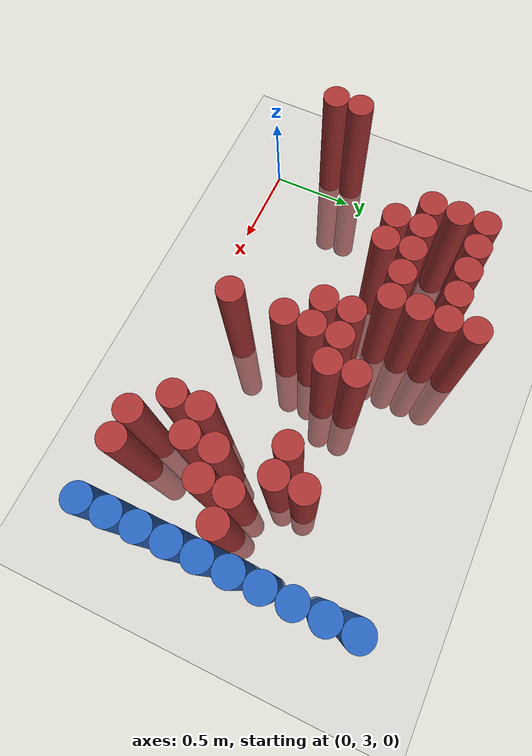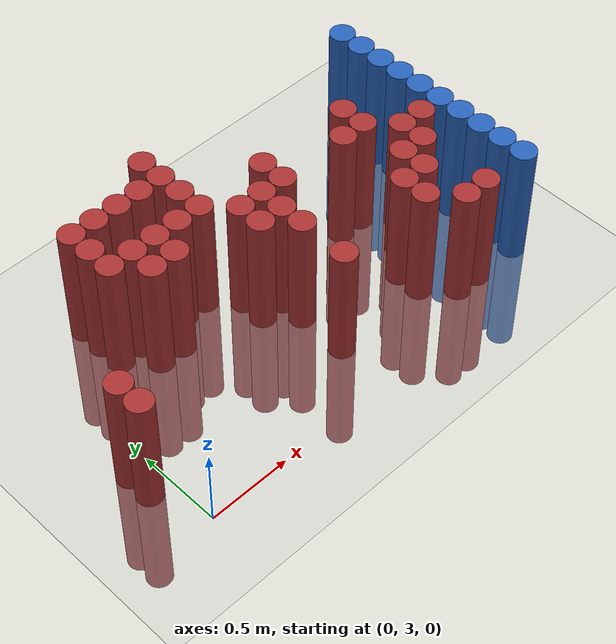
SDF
<sdf version="1.6">
 <world name="default">
  <model name="ground_plane">
   <static>1</static>
   <link name="link">
    <collision name="collision">
     <geometry><plane><normal>0 0 1</normal><size>100 100</size></plane></geometry>
     <surface><friction><ode><mu>100</mu><mu2>50</mu2></ode></friction></surface>
    </collision>
    <visual name="visual">
     <cast_shadows>0</cast_shadows>
     <geometry><plane><normal>0 0 1</normal><size>100 100</size></plane></geometry>
     <material>
      <script><uri>file://media/materials/scripts/gazebo.material</uri><name>Gazebo/Grey</name></script>
     </material>
    </visual>
   </link>
  </model>
  <model name="unit_cylinder_176">
   <static>1</static>
   <pose>-0.125000 3.325000 0.000000 0.000000 0.000000 0.000000</pose>
   <link name="link">
    <inertial>
     <mass>1</mass>
     <inertia><ixx>0.145833</ixx><ixy>0</ixy><ixz>0</ixz><iyy>0.145833</iyy><iyz>0</iyz><izz>0.125</izz></inertia>
    </inertial>
    <collision name="collision">
     <geometry><cylinder><radius>0.075000</radius><length>1.5</length></cylinder></geometry>
    </collision>
    <visual name="visual">
     <geometry><cylinder><radius>0.075000</radius><length>1.5</length></cylinder></geometry>
     <material>
      <ambient>0.648000 0.192000 0.192000 1</ambient>
      <diffuse>0.648000 0.192000 0.192000 1</diffuse>
     </material>
     <material>
      <script><name>Gazebo/Grey</name><uri>file://media/materials/scripts/gazebo.material</uri></script>
     </material>
    </visual>
   </link>
  </model>
  <model name="unit_cylinder_177">
   <static>1</static>
   <pose>-0.125000 3.475000 0.000000 0.000000 0.000000 0.000000</pose>
   <link name="link">
    <inertial>
     <mass>1</mass>
     <inertia><ixx>0.145833</ixx><ixy>0</ixy><ixz>0</ixz><iyy>0.145833</iyy><iyz>0</iyz><izz>0.125</izz></inertia>
    </inertial>
    <collision name="collision">
     <geometry><cylinder><radius>0.075000</radius><length>1.5</length></cylinder></geometry>
    </collision>
    <visual name="visual">
     <geometry><cylinder><radius>0.075000</radius><length>1.5</length></cylinder></geometry>
     <material>
      <ambient>0.648000 0.192000 0.192000 1</ambient>
      <diffuse>0.648000 0.192000 0.192000 1</diffuse>
     </material>
     <material>
      <script><name>Gazebo/Grey</name><uri>file://media/materials/scripts/gazebo.material</uri></script>
     </material>
    </visual>
   </link>
  </model>
  <model name="unit_cylinder_185">
   <static>1</static>
   <pose>0.325000 4.075000 0.000000 0.000000 0.000000 0.000000</pose>
   <link name="link">
    <inertial>
     <mass>1</mass>
     <inertia><ixx>0.145833</ixx><ixy>0</ixy><ixz>0</ixz><iyy>0.145833</iyy><iyz>0</iyz><izz>0.125</izz></inertia>
    </inertial>
    <collision name="collision">
     <geometry><cylinder><radius>0.075000</radius><length>1.5</length></cylinder></geometry>
    </collision>
    <visual name="visual">
     <geometry><cylinder><radius>0.075000</radius><length>1.5</length></cylinder></geometry>
     <material>
      <ambient>0.648000 0.192000 0.192000 1</ambient>
      <diffuse>0.648000 0.192000 0.192000 1</diffuse>
     </material>
     <material>
      <script><name>Gazebo/Grey</name><uri>file://media/materials/scripts/gazebo.material</uri></script>
     </material>
    </visual>
   </link>
  </model>
  <model name="unit_cylinder_186">
   <static>1</static>
   <pose>0.325000 4.225000 0.000000 0.000000 0.000000 0.000000</pose>
   <link name="link">
    <inertial>
     <mass>1</mass>
     <inertia><ixx>0.145833</ixx><ixy>0</ixy><ixz>0</ixz><iyy>0.145833</iyy><iyz>0</iyz><izz>0.125</izz></inertia>
    </inertial>
    <collision name="collision">
     <geometry><cylinder><radius>0.075000</radius><length>1.5</length></cylinder></geometry>
    </collision>
    <visual name="visual">
     <geometry><cylinder><radius>0.075000</radius><length>1.5</length></cylinder></geometry>
     <material>
      <ambient>0.648000 0.192000 0.192000 1</ambient>
      <diffuse>0.648000 0.192000 0.192000 1</diffuse>
     </material>
     <material>
      <script><name>Gazebo/Grey</name><uri>file://media/materials/scripts/gazebo.material</uri></script>
     </material>
    </visual>
   </link>
  </model>
  <model name="unit_cylinder_187">
   <static>1</static>
   <pose>0.325000 4.375000 0.000000 0.000000 0.000000 0.000000</pose>
   <link name="link">
    <inertial>
     <mass>1</mass>
     <inertia><ixx>0.145833</ixx><ixy>0</ixy><ixz>0</ixz><iyy>0.145833</iyy><iyz>0</iyz><izz>0.125</izz></inertia>
    </inertial>
    <collision name="collision">
     <geometry><cylinder><radius>0.075000</radius><length>1.5</length></cylinder></geometry>
    </collision>
    <visual name="visual">
     <geometry><cylinder><radius>0.075000</radius><length>1.5</length></cylinder></geometry>
     <material>
      <ambient>0.648000 0.192000 0.192000 1</ambient>
      <diffuse>0.648000 0.192000 0.192000 1</diffuse>
     </material>
     <material>
      <script><name>Gazebo/Grey</name><uri>file://media/materials/scripts/gazebo.material</uri></script>
     </material>
    </visual>
   </link>
  </model>
  <model name="unit_cylinder_188">
   <static>1</static>
   <pose>0.475000 3.925000 0.000000 0.000000 0.000000 0.000000</pose>
   <link name="link">
    <inertial>
     <mass>1</mass>
     <inertia><ixx>0.145833</ixx><ixy>0</ixy><ixz>0</ixz><iyy>0.145833</iyy><iyz>0</iyz><izz>0.125</izz></inertia>
    </inertial>
    <collision name="collision">
     <geometry><cylinder><radius>0.075000</radius><length>1.5</length></cylinder></geometry>
    </collision>
    <visual name="visual">
     <geometry><cylinder><radius>0.075000</radius><length>1.5</length></cylinder></geometry>
     <material>
      <ambient>0.648000 0.192000 0.192000 1</ambient>
      <diffuse>0.648000 0.192000 0.192000 1</diffuse>
     </material>
     <material>
      <script><name>Gazebo/Grey</name><uri>file://media/materials/scripts/gazebo.material</uri></script>
     </material>
    </visual>
   </link>
  </model>
  <model name="unit_cylinder_189">
   <static>1</static>
   <pose>0.475000 4.075000 0.000000 0.000000 0.000000 0.000000</pose>
   <link name="link">
    <inertial>
     <mass>1</mass>
     <inertia><ixx>0.145833</ixx><ixy>0</ixy><ixz>0</ixz><iyy>0.145833</iyy><iyz>0</iyz><izz>0.125</izz></inertia>
    </inertial>
    <collision name="collision">
     <geometry><cylinder><radius>0.075000</radius><length>1.5</length></cylinder></geometry>
    </collision>
    <visual name="visual">
     <geometry><cylinder><radius>0.075000</radius><length>1.5</length></cylinder></geometry>
     <material>
      <ambient>0.648000 0.192000 0.192000 1</ambient>
      <diffuse>0.648000 0.192000 0.192000 1</diffuse>
     </material>
     <material>
      <script><name>Gazebo/Grey</name><uri>file://media/materials/scripts/gazebo.material</uri></script>
     </material>
    </visual>
   </link>
  </model>
  <model name="unit_cylinder_190">
   <static>1</static>
   <pose>0.475000 4.375000 0.000000 0.000000 0.000000 0.000000</pose>
   <link name="link">
    <inertial>
     <mass>1</mass>
     <inertia><ixx>0.145833</ixx><ixy>0</ixy><ixz>0</ixz><iyy>0.145833</iyy><iyz>0</iyz><izz>0.125</izz></inertia>
    </inertial>
    <collision name="collision">
     <geometry><cylinder><radius>0.075000</radius><length>1.5</length></cylinder></geometry>
    </collision>
    <visual name="visual">
     <geometry><cylinder><radius>0.075000</radius><length>1.5</length></cylinder></geometry>
     <material>
      <ambient>0.648000 0.192000 0.192000 1</ambient>
      <diffuse>0.648000 0.192000 0.192000 1</diffuse>
     </material>
     <material>
      <script><name>Gazebo/Grey</name><uri>file://media/materials/scripts/gazebo.material</uri></script>
     </material>
    </visual>
   </link>
  </model>
  <model name="unit_cylinder_193">
   <static>1</static>
   <pose>0.625000 3.925000 0.000000 0.000000 0.000000 0.000000</pose>
   <link name="link">
    <inertial>
     <mass>1</mass>
     <inertia><ixx>0.145833</ixx><ixy>0</ixy><ixz>0</ixz><iyy>0.145833</iyy><iyz>0</iyz><izz>0.125</izz></inertia>
    </inertial>
    <collision name="collision">
     <geometry><cylinder><radius>0.075000</radius><length>1.5</length></cylinder></geometry>
    </collision>
    <visual name="visual">
     <geometry><cylinder><radius>0.075000</radius><length>1.5</length></cylinder></geometry>
     <material>
      <ambient>0.648000 0.192000 0.192000 1</ambient>
      <diffuse>0.648000 0.192000 0.192000 1</diffuse>
     </material>
     <material>
      <script><name>Gazebo/Grey</name><uri>file://media/materials/scripts/gazebo.material</uri></script>
     </material>
    </visual>
   </link>
  </model>
  <model name="unit_cylinder_194">
   <static>1</static>
   <pose>0.625000 4.075000 0.000000 0.000000 0.000000 0.000000</pose>
   <link name="link">
    <inertial>
     <mass>1</mass>
     <inertia><ixx>0.145833</ixx><ixy>0</ixy><ixz>0</ixz><iyy>0.145833</iyy><iyz>0</iyz><izz>0.125</izz></inertia>
    </inertial>
    <collision name="collision">
     <geometry><cylinder><radius>0.075000</radius><length>1.5</length></cylinder></geometry>
    </collision>
    <visual name="visual">
     <geometry><cylinder><radius>0.075000</radius><length>1.5</length></cylinder></geometry>
     <material>
      <ambient>0.648000 0.192000 0.192000 1</ambient>
      <diffuse>0.648000 0.192000 0.192000 1</diffuse>
     </material>
     <material>
      <script><name>Gazebo/Grey</name><uri>file://media/materials/scripts/gazebo.material</uri></script>
     </material>
    </visual>
   </link>
  </model>
  <model name="unit_cylinder_195">
   <static>1</static>
   <pose>0.625000 4.375000 0.000000 0.000000 0.000000 0.000000</pose>
   <link name="link">
    <inertial>
     <mass>1</mass>
     <inertia><ixx>0.145833</ixx><ixy>0</ixy><ixz>0</ixz><iyy>0.145833</iyy><iyz>0</iyz><izz>0.125</izz></inertia>
    </inertial>
    <collision name="collision">
     <geometry><cylinder><radius>0.075000</radius><length>1.5</length></cylinder></geometry>
    </collision>
    <visual name="visual">
     <geometry><cylinder><radius>0.075000</radius><length>1.5</length></cylinder></geometry>
     <material>
      <ambient>0.648000 0.192000 0.192000 1</ambient>
      <diffuse>0.648000 0.192000 0.192000 1</diffuse>
     </material>
     <material>
      <script><name>Gazebo/Grey</name><uri>file://media/materials/scripts/gazebo.material</uri></script>
     </material>
    </visual>
   </link>
  </model>
  <model name="unit_cylinder_200">
   <static>1</static>
   <pose>0.775000 4.075000 0.000000 0.000000 0.000000 0.000000</pose>
   <link name="link">
    <inertial>
     <mass>1</mass>
     <inertia><ixx>0.145833</ixx><ixy>0</ixy><ixz>0</ixz><iyy>0.145833</iyy><iyz>0</iyz><izz>0.125</izz></inertia>
    </inertial>
    <collision name="collision">
     <geometry><cylinder><radius>0.075000</radius><length>1.5</length></cylinder></geometry>
    </collision>
    <visual name="visual">
     <geometry><cylinder><radius>0.075000</radius><length>1.5</length></cylinder></geometry>
     <material>
      <ambient>0.648000 0.192000 0.192000 1</ambient>
      <diffuse>0.648000 0.192000 0.192000 1</diffuse>
     </material>
     <material>
      <script><name>Gazebo/Grey</name><uri>file://media/materials/scripts/gazebo.material</uri></script>
     </material>
    </visual>
   </link>
  </model>
  <model name="unit_cylinder_201">
   <static>1</static>
   <pose>0.775000 4.375000 0.000000 0.000000 0.000000 0.000000</pose>
   <link name="link">
    <inertial>
     <mass>1</mass>
     <inertia><ixx>0.145833</ixx><ixy>0</ixy><ixz>0</ixz><iyy>0.145833</iyy><iyz>0</iyz><izz>0.125</izz></inertia>
    </inertial>
    <collision name="collision">
     <geometry><cylinder><radius>0.075000</radius><length>1.5</length></cylinder></geometry>
    </collision>
    <visual name="visual">
     <geometry><cylinder><radius>0.075000</radius><length>1.5</length></cylinder></geometry>
     <material>
      <ambient>0.648000 0.192000 0.192000 1</ambient>
      <diffuse>0.648000 0.192000 0.192000 1</diffuse>
     </material>
     <material>
      <script><name>Gazebo/Grey</name><uri>file://media/materials/scripts/gazebo.material</uri></script>
     </material>
    </visual>
   </link>
  </model>
  <model name="unit_cylinder_205">
   <static>1</static>
   <pose>0.925000 4.075000 0.000000 0.000000 0.000000 0.000000</pose>
   <link name="link">
    <inertial>
     <mass>1</mass>
     <inertia><ixx>0.145833</ixx><ixy>0</ixy><ixz>0</ixz><iyy>0.145833</iyy><iyz>0</iyz><izz>0.125</izz></inertia>
    </inertial>
    <collision name="collision">
     <geometry><cylinder><radius>0.075000</radius><length>1.5</length></cylinder></geometry>
    </collision>
    <visual name="visual">
     <geometry><cylinder><radius>0.075000</radius><length>1.5</length></cylinder></geometry>
     <material>
      <ambient>0.648000 0.192000 0.192000 1</ambient>
      <diffuse>0.648000 0.192000 0.192000 1</diffuse>
     </material>
     <material>
      <script><name>Gazebo/Grey</name><uri>file://media/materials/scripts/gazebo.material</uri></script>
     </material>
    </visual>
   </link>
  </model>
  <model name="unit_cylinder_206">
   <static>1</static>
   <pose>0.925000 4.225000 0.000000 0.000000 0.000000 0.000000</pose>
   <link name="link">
    <inertial>
     <mass>1</mass>
     <inertia><ixx>0.145833</ixx><ixy>0</ixy><ixz>0</ixz><iyy>0.145833</iyy><iyz>0</iyz><izz>0.125</izz></inertia>
    </inertial>
    <collision name="collision">
     <geometry><cylinder><radius>0.075000</radius><length>1.5</length></cylinder></geometry>
    </collision>
    <visual name="visual">
     <geometry><cylinder><radius>0.075000</radius><length>1.5</length></cylinder></geometry>
     <material>
      <ambient>0.648000 0.192000 0.192000 1</ambient>
      <diffuse>0.648000 0.192000 0.192000 1</diffuse>
     </material>
     <material>
      <script><name>Gazebo/Grey</name><uri>file://media/materials/scripts/gazebo.material</uri></script>
     </material>
    </visual>
   </link>
  </model>
  <model name="unit_cylinder_207">
   <static>1</static>
   <pose>0.925000 4.375000 0.000000 0.000000 0.000000 0.000000</pose>
   <link name="link">
    <inertial>
     <mass>1</mass>
     <inertia><ixx>0.145833</ixx><ixy>0</ixy><ixz>0</ixz><iyy>0.145833</iyy><iyz>0</iyz><izz>0.125</izz></inertia>
    </inertial>
    <collision name="collision">
     <geometry><cylinder><radius>0.075000</radius><length>1.5</length></cylinder></geometry>
    </collision>
    <visual name="visual">
     <geometry><cylinder><radius>0.075000</radius><length>1.5</length></cylinder></geometry>
     <material>
      <ambient>0.648000 0.192000 0.192000 1</ambient>
      <diffuse>0.648000 0.192000 0.192000 1</diffuse>
     </material>
     <material>
      <script><name>Gazebo/Grey</name><uri>file://media/materials/scripts/gazebo.material</uri></script>
     </material>
    </visual>
   </link>
  </model>
  <model name="unit_cylinder_208">
   <static>1</static>
   <pose>0.925000 4.525000 0.000000 0.000000 0.000000 0.000000</pose>
   <link name="link">
    <inertial>
     <mass>1</mass>
     <inertia><ixx>0.145833</ixx><ixy>0</ixy><ixz>0</ixz><iyy>0.145833</iyy><iyz>0</iyz><izz>0.125</izz></inertia>
    </inertial>
    <collision name="collision">
     <geometry><cylinder><radius>0.075000</radius><length>1.5</length></cylinder></geometry>
    </collision>
    <visual name="visual">
     <geometry><cylinder><radius>0.075000</radius><length>1.5</length></cylinder></geometry>
     <material>
      <ambient>0.648000 0.192000 0.192000 1</ambient>
      <diffuse>0.648000 0.192000 0.192000 1</diffuse>
     </material>
     <material>
      <script><name>Gazebo/Grey</name><uri>file://media/materials/scripts/gazebo.material</uri></script>
     </material>
    </visual>
   </link>
  </model>
  <model name="unit_cylinder_210">
   <static>1</static>
   <pose>1.075000 3.775000 0.000000 0.000000 0.000000 0.000000</pose>
   <link name="link">
    <inertial>
     <mass>1</mass>
     <inertia><ixx>0.145833</ixx><ixy>0</ixy><ixz>0</ixz><iyy>0.145833</iyy><iyz>0</iyz><izz>0.125</izz></inertia>
    </inertial>
    <collision name="collision">
     <geometry><cylinder><radius>0.075000</radius><length>1.5</length></cylinder></geometry>
    </collision>
    <visual name="visual">
     <geometry><cylinder><radius>0.075000</radius><length>1.5</length></cylinder></geometry>
     <material>
      <ambient>0.648000 0.192000 0.192000 1</ambient>
      <diffuse>0.648000 0.192000 0.192000 1</diffuse>
     </material>
     <material>
      <script><name>Gazebo/Grey</name><uri>file://media/materials/scripts/gazebo.material</uri></script>
     </material>
    </visual>
   </link>
  </model>
  <model name="unit_cylinder_211">
   <static>1</static>
   <pose>1.075000 3.925000 0.000000 0.000000 0.000000 0.000000</pose>
   <link name="link">
    <inertial>
     <mass>1</mass>
     <inertia><ixx>0.145833</ixx><ixy>0</ixy><ixz>0</ixz><iyy>0.145833</iyy><iyz>0</iyz><izz>0.125</izz></inertia>
    </inertial>
    <collision name="collision">
     <geometry><cylinder><radius>0.075000</radius><length>1.5</length></cylinder></geometry>
    </collision>
    <visual name="visual">
     <geometry><cylinder><radius>0.075000</radius><length>1.5</length></cylinder></geometry>
     <material>
      <ambient>0.648000 0.192000 0.192000 1</ambient>
      <diffuse>0.648000 0.192000 0.192000 1</diffuse>
     </material>
     <material>
      <script><name>Gazebo/Grey</name><uri>file://media/materials/scripts/gazebo.material</uri></script>
     </material>
    </visual>
   </link>
  </model>
  <model name="unit_cylinder_215">
   <static>1</static>
   <pose>1.225000 3.325000 0.000000 0.000000 0.000000 0.000000</pose>
   <link name="link">
    <inertial>
     <mass>1</mass>
     <inertia><ixx>0.145833</ixx><ixy>0</ixy><ixz>0</ixz><iyy>0.145833</iyy><iyz>0</iyz><izz>0.125</izz></inertia>
    </inertial>
    <collision name="collision">
     <geometry><cylinder><radius>0.075000</radius><length>1.5</length></cylinder></geometry>
    </collision>
    <visual name="visual">
     <geometry><cylinder><radius>0.075000</radius><length>1.5</length></cylinder></geometry>
     <material>
      <ambient>0.648000 0.192000 0.192000 1</ambient>
      <diffuse>0.648000 0.192000 0.192000 1</diffuse>
     </material>
     <material>
      <script><name>Gazebo/Grey</name><uri>file://media/materials/scripts/gazebo.material</uri></script>
     </material>
    </visual>
   </link>
  </model>
  <model name="unit_cylinder_216">
   <static>1</static>
   <pose>1.225000 3.625000 0.000000 0.000000 0.000000 0.000000</pose>
   <link name="link">
    <inertial>
     <mass>1</mass>
     <inertia><ixx>0.145833</ixx><ixy>0</ixy><ixz>0</ixz><iyy>0.145833</iyy><iyz>0</iyz><izz>0.125</izz></inertia>
    </inertial>
    <collision name="collision">
     <geometry><cylinder><radius>0.075000</radius><length>1.5</length></cylinder></geometry>
    </collision>
    <visual name="visual">
     <geometry><cylinder><radius>0.075000</radius><length>1.5</length></cylinder></geometry>
     <material>
      <ambient>0.648000 0.192000 0.192000 1</ambient>
      <diffuse>0.648000 0.192000 0.192000 1</diffuse>
     </material>
     <material>
      <script><name>Gazebo/Grey</name><uri>file://media/materials/scripts/gazebo.material</uri></script>
     </material>
    </visual>
   </link>
  </model>
  <model name="unit_cylinder_217">
   <static>1</static>
   <pose>1.225000 3.775000 0.000000 0.000000 0.000000 0.000000</pose>
   <link name="link">
    <inertial>
     <mass>1</mass>
     <inertia><ixx>0.145833</ixx><ixy>0</ixy><ixz>0</ixz><iyy>0.145833</iyy><iyz>0</iyz><izz>0.125</izz></inertia>
    </inertial>
    <collision name="collision">
     <geometry><cylinder><radius>0.075000</radius><length>1.5</length></cylinder></geometry>
    </collision>
    <visual name="visual">
     <geometry><cylinder><radius>0.075000</radius><length>1.5</length></cylinder></geometry>
     <material>
      <ambient>0.648000 0.192000 0.192000 1</ambient>
      <diffuse>0.648000 0.192000 0.192000 1</diffuse>
     </material>
     <material>
      <script><name>Gazebo/Grey</name><uri>file://media/materials/scripts/gazebo.material</uri></script>
     </material>
    </visual>
   </link>
  </model>
  <model name="unit_cylinder_218">
   <static>1</static>
   <pose>1.225000 3.925000 0.000000 0.000000 0.000000 0.000000</pose>
   <link name="link">
    <inertial>
     <mass>1</mass>
     <inertia><ixx>0.145833</ixx><ixy>0</ixy><ixz>0</ixz><iyy>0.145833</iyy><iyz>0</iyz><izz>0.125</izz></inertia>
    </inertial>
    <collision name="collision">
     <geometry><cylinder><radius>0.075000</radius><length>1.5</length></cylinder></geometry>
    </collision>
    <visual name="visual">
     <geometry><cylinder><radius>0.075000</radius><length>1.5</length></cylinder></geometry>
     <material>
      <ambient>0.648000 0.192000 0.192000 1</ambient>
      <diffuse>0.648000 0.192000 0.192000 1</diffuse>
     </material>
     <material>
      <script><name>Gazebo/Grey</name><uri>file://media/materials/scripts/gazebo.material</uri></script>
     </material>
    </visual>
   </link>
  </model>
  <model name="unit_cylinder_220">
   <static>1</static>
   <pose>1.375000 3.925000 0.000000 0.000000 0.000000 0.000000</pose>
   <link name="link">
    <inertial>
     <mass>1</mass>
     <inertia><ixx>0.145833</ixx><ixy>0</ixy><ixz>0</ixz><iyy>0.145833</iyy><iyz>0</iyz><izz>0.125</izz></inertia>
    </inertial>
    <collision name="collision">
     <geometry><cylinder><radius>0.075000</radius><length>1.5</length></cylinder></geometry>
    </collision>
    <visual name="visual">
     <geometry><cylinder><radius>0.075000</radius><length>1.5</length></cylinder></geometry>
     <material>
      <ambient>0.648000 0.192000 0.192000 1</ambient>
      <diffuse>0.648000 0.192000 0.192000 1</diffuse>
     </material>
     <material>
      <script><name>Gazebo/Grey</name><uri>file://media/materials/scripts/gazebo.material</uri></script>
     </material>
    </visual>
   </link>
  </model>
  <model name="unit_cylinder_221">
   <static>1</static>
   <pose>1.375000 4.075000 0.000000 0.000000 0.000000 0.000000</pose>
   <link name="link">
    <inertial>
     <mass>1</mass>
     <inertia><ixx>0.145833</ixx><ixy>0</ixy><ixz>0</ixz><iyy>0.145833</iyy><iyz>0</iyz><izz>0.125</izz></inertia>
    </inertial>
    <collision name="collision">
     <geometry><cylinder><radius>0.075000</radius><length>1.5</length></cylinder></geometry>
    </collision>
    <visual name="visual">
     <geometry><cylinder><radius>0.075000</radius><length>1.5</length></cylinder></geometry>
     <material>
      <ambient>0.648000 0.192000 0.192000 1</ambient>
      <diffuse>0.648000 0.192000 0.192000 1</diffuse>
     </material>
     <material>
      <script><name>Gazebo/Grey</name><uri>file://media/materials/scripts/gazebo.material</uri></script>
     </material>
    </visual>
   </link>
  </model>
  <model name="unit_cylinder_229">
   <static>1</static>
   <pose>1.825000 3.325000 0.000000 0.000000 0.000000 0.000000</pose>
   <link name="link">
    <inertial>
     <mass>1</mass>
     <inertia><ixx>0.145833</ixx><ixy>0</ixy><ixz>0</ixz><iyy>0.145833</iyy><iyz>0</iyz><izz>0.125</izz></inertia>
    </inertial>
    <collision name="collision">
     <geometry><cylinder><radius>0.075000</radius><length>1.5</length></cylinder></geometry>
    </collision>
    <visual name="visual">
     <geometry><cylinder><radius>0.075000</radius><length>1.5</length></cylinder></geometry>
     <material>
      <ambient>0.648000 0.192000 0.192000 1</ambient>
      <diffuse>0.648000 0.192000 0.192000 1</diffuse>
     </material>
     <material>
      <script><name>Gazebo/Grey</name><uri>file://media/materials/scripts/gazebo.material</uri></script>
     </material>
    </visual>
   </link>
  </model>
  <model name="unit_cylinder_230">
   <static>1</static>
   <pose>1.825000 3.475000 0.000000 0.000000 0.000000 0.000000</pose>
   <link name="link">
    <inertial>
     <mass>1</mass>
     <inertia><ixx>0.145833</ixx><ixy>0</ixy><ixz>0</ixz><iyy>0.145833</iyy><iyz>0</iyz><izz>0.125</izz></inertia>
    </inertial>
    <collision name="collision">
     <geometry><cylinder><radius>0.075000</radius><length>1.5</length></cylinder></geometry>
    </collision>
    <visual name="visual">
     <geometry><cylinder><radius>0.075000</radius><length>1.5</length></cylinder></geometry>
     <material>
      <ambient>0.648000 0.192000 0.192000 1</ambient>
      <diffuse>0.648000 0.192000 0.192000 1</diffuse>
     </material>
     <material>
      <script><name>Gazebo/Grey</name><uri>file://media/materials/scripts/gazebo.material</uri></script>
     </material>
    </visual>
   </link>
  </model>
  <model name="unit_cylinder_231">
   <static>1</static>
   <pose>1.825000 3.925000 0.000000 0.000000 0.000000 0.000000</pose>
   <link name="link">
    <inertial>
     <mass>1</mass>
     <inertia><ixx>0.145833</ixx><ixy>0</ixy><ixz>0</ixz><iyy>0.145833</iyy><iyz>0</iyz><izz>0.125</izz></inertia>
    </inertial>
    <collision name="collision">
     <geometry><cylinder><radius>0.075000</radius><length>1.5</length></cylinder></geometry>
    </collision>
    <visual name="visual">
     <geometry><cylinder><radius>0.075000</radius><length>1.5</length></cylinder></geometry>
     <material>
      <ambient>0.648000 0.192000 0.192000 1</ambient>
      <diffuse>0.648000 0.192000 0.192000 1</diffuse>
     </material>
     <material>
      <script><name>Gazebo/Grey</name><uri>file://media/materials/scripts/gazebo.material</uri></script>
     </material>
    </visual>
   </link>
  </model>
  <model name="unit_cylinder_235">
   <static>1</static>
   <pose>1.975000 3.175000 0.000000 0.000000 0.000000 0.000000</pose>
   <link name="link">
    <inertial>
     <mass>1</mass>
     <inertia><ixx>0.145833</ixx><ixy>0</ixy><ixz>0</ixz><iyy>0.145833</iyy><iyz>0</iyz><izz>0.125</izz></inertia>
    </inertial>
    <collision name="collision">
     <geometry><cylinder><radius>0.075000</radius><length>1.5</length></cylinder></geometry>
    </collision>
    <visual name="visual">
     <geometry><cylinder><radius>0.075000</radius><length>1.5</length></cylinder></geometry>
     <material>
      <ambient>0.648000 0.192000 0.192000 1</ambient>
      <diffuse>0.648000 0.192000 0.192000 1</diffuse>
     </material>
     <material>
      <script><name>Gazebo/Grey</name><uri>file://media/materials/scripts/gazebo.material</uri></script>
     </material>
    </visual>
   </link>
  </model>
  <model name="unit_cylinder_236">
   <static>1</static>
   <pose>1.975000 3.475000 0.000000 0.000000 0.000000 0.000000</pose>
   <link name="link">
    <inertial>
     <mass>1</mass>
     <inertia><ixx>0.145833</ixx><ixy>0</ixy><ixz>0</ixz><iyy>0.145833</iyy><iyz>0</iyz><izz>0.125</izz></inertia>
    </inertial>
    <collision name="collision">
     <geometry><cylinder><radius>0.075000</radius><length>1.5</length></cylinder></geometry>
    </collision>
    <visual name="visual">
     <geometry><cylinder><radius>0.075000</radius><length>1.5</length></cylinder></geometry>
     <material>
      <ambient>0.648000 0.192000 0.192000 1</ambient>
      <diffuse>0.648000 0.192000 0.192000 1</diffuse>
     </material>
     <material>
      <script><name>Gazebo/Grey</name><uri>file://media/materials/scripts/gazebo.material</uri></script>
     </material>
    </visual>
   </link>
  </model>
  <model name="unit_cylinder_237">
   <static>1</static>
   <pose>1.975000 3.625000 0.000000 0.000000 0.000000 0.000000</pose>
   <link name="link">
    <inertial>
     <mass>1</mass>
     <inertia><ixx>0.145833</ixx><ixy>0</ixy><ixz>0</ixz><iyy>0.145833</iyy><iyz>0</iyz><izz>0.125</izz></inertia>
    </inertial>
    <collision name="collision">
     <geometry><cylinder><radius>0.075000</radius><length>1.5</length></cylinder></geometry>
    </collision>
    <visual name="visual">
     <geometry><cylinder><radius>0.075000</radius><length>1.5</length></cylinder></geometry>
     <material>
      <ambient>0.648000 0.192000 0.192000 1</ambient>
      <diffuse>0.648000 0.192000 0.192000 1</diffuse>
     </material>
     <material>
      <script><name>Gazebo/Grey</name><uri>file://media/materials/scripts/gazebo.material</uri></script>
     </material>
    </visual>
   </link>
  </model>
  <model name="unit_cylinder_238">
   <static>1</static>
   <pose>1.975000 3.925000 0.000000 0.000000 0.000000 0.000000</pose>
   <link name="link">
    <inertial>
     <mass>1</mass>
     <inertia><ixx>0.145833</ixx><ixy>0</ixy><ixz>0</ixz><iyy>0.145833</iyy><iyz>0</iyz><izz>0.125</izz></inertia>
    </inertial>
    <collision name="collision">
     <geometry><cylinder><radius>0.075000</radius><length>1.5</length></cylinder></geometry>
    </collision>
    <visual name="visual">
     <geometry><cylinder><radius>0.075000</radius><length>1.5</length></cylinder></geometry>
     <material>
      <ambient>0.648000 0.192000 0.192000 1</ambient>
      <diffuse>0.648000 0.192000 0.192000 1</diffuse>
     </material>
     <material>
      <script><name>Gazebo/Grey</name><uri>file://media/materials/scripts/gazebo.material</uri></script>
     </material>
    </visual>
   </link>
  </model>
  <model name="unit_cylinder_239">
   <static>1</static>
   <pose>1.975000 4.075000 0.000000 0.000000 0.000000 0.000000</pose>
   <link name="link">
    <inertial>
     <mass>1</mass>
     <inertia><ixx>0.145833</ixx><ixy>0</ixy><ixz>0</ixz><iyy>0.145833</iyy><iyz>0</iyz><izz>0.125</izz></inertia>
    </inertial>
    <collision name="collision">
     <geometry><cylinder><radius>0.075000</radius><length>1.5</length></cylinder></geometry>
    </collision>
    <visual name="visual">
     <geometry><cylinder><radius>0.075000</radius><length>1.5</length></cylinder></geometry>
     <material>
      <ambient>0.648000 0.192000 0.192000 1</ambient>
      <diffuse>0.648000 0.192000 0.192000 1</diffuse>
     </material>
     <material>
      <script><name>Gazebo/Grey</name><uri>file://media/materials/scripts/gazebo.material</uri></script>
     </material>
    </visual>
   </link>
  </model>
  <model name="unit_cylinder_246">
   <static>1</static>
   <pose>2.125000 3.175000 0.000000 0.000000 0.000000 0.000000</pose>
   <link name="link">
    <inertial>
     <mass>1</mass>
     <inertia><ixx>0.145833</ixx><ixy>0</ixy><ixz>0</ixz><iyy>0.145833</iyy><iyz>0</iyz><izz>0.125</izz></inertia>
    </inertial>
    <collision name="collision">
     <geometry><cylinder><radius>0.075000</radius><length>1.5</length></cylinder></geometry>
    </collision>
    <visual name="visual">
     <geometry><cylinder><radius>0.075000</radius><length>1.5</length></cylinder></geometry>
     <material>
      <ambient>0.648000 0.192000 0.192000 1</ambient>
      <diffuse>0.648000 0.192000 0.192000 1</diffuse>
     </material>
     <material>
      <script><name>Gazebo/Grey</name><uri>file://media/materials/scripts/gazebo.material</uri></script>
     </material>
    </visual>
   </link>
  </model>
  <model name="unit_cylinder_247">
   <static>1</static>
   <pose>2.125000 3.625000 0.000000 0.000000 0.000000 0.000000</pose>
   <link name="link">
    <inertial>
     <mass>1</mass>
     <inertia><ixx>0.145833</ixx><ixy>0</ixy><ixz>0</ixz><iyy>0.145833</iyy><iyz>0</iyz><izz>0.125</izz></inertia>
    </inertial>
    <collision name="collision">
     <geometry><cylinder><radius>0.075000</radius><length>1.5</length></cylinder></geometry>
    </collision>
    <visual name="visual">
     <geometry><cylinder><radius>0.075000</radius><length>1.5</length></cylinder></geometry>
     <material>
      <ambient>0.648000 0.192000 0.192000 1</ambient>
      <diffuse>0.648000 0.192000 0.192000 1</diffuse>
     </material>
     <material>
      <script><name>Gazebo/Grey</name><uri>file://media/materials/scripts/gazebo.material</uri></script>
     </material>
    </visual>
   </link>
  </model>
  <model name="unit_cylinder_248">
   <static>1</static>
   <pose>2.125000 3.775000 0.000000 0.000000 0.000000 0.000000</pose>
   <link name="link">
    <inertial>
     <mass>1</mass>
     <inertia><ixx>0.145833</ixx><ixy>0</ixy><ixz>0</ixz><iyy>0.145833</iyy><iyz>0</iyz><izz>0.125</izz></inertia>
    </inertial>
    <collision name="collision">
     <geometry><cylinder><radius>0.075000</radius><length>1.5</length></cylinder></geometry>
    </collision>
    <visual name="visual">
     <geometry><cylinder><radius>0.075000</radius><length>1.5</length></cylinder></geometry>
     <material>
      <ambient>0.648000 0.192000 0.192000 1</ambient>
      <diffuse>0.648000 0.192000 0.192000 1</diffuse>
     </material>
     <material>
      <script><name>Gazebo/Grey</name><uri>file://media/materials/scripts/gazebo.material</uri></script>
     </material>
    </visual>
   </link>
  </model>
  <model name="unit_cylinder_251">
   <static>1</static>
   <pose>2.275000 3.775000 0.000000 0.000000 0.000000 0.000000</pose>
   <link name="link">
    <inertial>
     <mass>1</mass>
     <inertia><ixx>0.145833</ixx><ixy>0</ixy><ixz>0</ixz><iyy>0.145833</iyy><iyz>0</iyz><izz>0.125</izz></inertia>
    </inertial>
    <collision name="collision">
     <geometry><cylinder><radius>0.075000</radius><length>1.5</length></cylinder></geometry>
    </collision>
    <visual name="visual">
     <geometry><cylinder><radius>0.075000</radius><length>1.5</length></cylinder></geometry>
     <material>
      <ambient>0.648000 0.192000 0.192000 1</ambient>
      <diffuse>0.648000 0.192000 0.192000 1</diffuse>
     </material>
     <material>
      <script><name>Gazebo/Grey</name><uri>file://media/materials/scripts/gazebo.material</uri></script>
     </material>
    </visual>
   </link>
  </model>
  <model name="unit_cylinder_272">
   <static>1</static>
   <pose>2.425000 3.175000 0.000000 0.000000 0.000000 0.000000</pose>
   <link name="link">
    <inertial>
     <mass>1</mass>
     <inertia><ixx>0.145833</ixx><ixy>0</ixy><ixz>0</ixz><iyy>0.145833</iyy><iyz>0</iyz><izz>0.125</izz></inertia>
    </inertial>
    <collision name="collision">
     <geometry><cylinder><radius>0.075000</radius><length>1.5</length></cylinder></geometry>
    </collision>
    <visual name="visual">
     <geometry><cylinder><radius>0.075000</radius><length>1.5</length></cylinder></geometry>
     <material>
      <ambient>0.152000 0.379000 0.720000 1</ambient>
      <diffuse>0.152000 0.379000 0.720000 1</diffuse>
     </material>
     <material>
      <script><name>Gazebo/Grey</name><uri>file://media/materials/scripts/gazebo.material</uri></script>
     </material>
    </visual>
   </link>
  </model>
  <model name="unit_cylinder_273">
   <static>1</static>
   <pose>2.425000 3.325000 0.000000 0.000000 0.000000 0.000000</pose>
   <link name="link">
    <inertial>
     <mass>1</mass>
     <inertia><ixx>0.145833</ixx><ixy>0</ixy><ixz>0</ixz><iyy>0.145833</iyy><iyz>0</iyz><izz>0.125</izz></inertia>
    </inertial>
    <collision name="collision">
     <geometry><cylinder><radius>0.075000</radius><length>1.5</length></cylinder></geometry>
    </collision>
    <visual name="visual">
     <geometry><cylinder><radius>0.075000</radius><length>1.5</length></cylinder></geometry>
     <material>
      <ambient>0.152000 0.379000 0.720000 1</ambient>
      <diffuse>0.152000 0.379000 0.720000 1</diffuse>
     </material>
     <material>
      <script><name>Gazebo/Grey</name><uri>file://media/materials/scripts/gazebo.material</uri></script>
     </material>
    </visual>
   </link>
  </model>
  <model name="unit_cylinder_274">
   <static>1</static>
   <pose>2.425000 3.475000 0.000000 0.000000 0.000000 0.000000</pose>
   <link name="link">
    <inertial>
     <mass>1</mass>
     <inertia><ixx>0.145833</ixx><ixy>0</ixy><ixz>0</ixz><iyy>0.145833</iyy><iyz>0</iyz><izz>0.125</izz></inertia>
    </inertial>
    <collision name="collision">
     <geometry><cylinder><radius>0.075000</radius><length>1.5</length></cylinder></geometry>
    </collision>
    <visual name="visual">
     <geometry><cylinder><radius>0.075000</radius><length>1.5</length></cylinder></geometry>
     <material>
      <ambient>0.152000 0.379000 0.720000 1</ambient>
      <diffuse>0.152000 0.379000 0.720000 1</diffuse>
     </material>
     <material>
      <script><name>Gazebo/Grey</name><uri>file://media/materials/scripts/gazebo.material</uri></script>
     </material>
    </visual>
   </link>
  </model>
  <model name="unit_cylinder_275">
   <static>1</static>
   <pose>2.425000 3.625000 0.000000 0.000000 0.000000 0.000000</pose>
   <link name="link">
    <inertial>
     <mass>1</mass>
     <inertia><ixx>0.145833</ixx><ixy>0</ixy><ixz>0</ixz><iyy>0.145833</iyy><iyz>0</iyz><izz>0.125</izz></inertia>
    </inertial>
    <collision name="collision">
     <geometry><cylinder><radius>0.075000</radius><length>1.5</length></cylinder></geometry>
    </collision>
    <visual name="visual">
     <geometry><cylinder><radius>0.075000</radius><length>1.5</length></cylinder></geometry>
     <material>
      <ambient>0.152000 0.379000 0.720000 1</ambient>
      <diffuse>0.152000 0.379000 0.720000 1</diffuse>
     </material>
     <material>
      <script><name>Gazebo/Grey</name><uri>file://media/materials/scripts/gazebo.material</uri></script>
     </material>
    </visual>
   </link>
  </model>
  <model name="unit_cylinder_276">
   <static>1</static>
   <pose>2.425000 3.775000 0.000000 0.000000 0.000000 0.000000</pose>
   <link name="link">
    <inertial>
     <mass>1</mass>
     <inertia><ixx>0.145833</ixx><ixy>0</ixy><ixz>0</ixz><iyy>0.145833</iyy><iyz>0</iyz><izz>0.125</izz></inertia>
    </inertial>
    <collision name="collision">
     <geometry><cylinder><radius>0.075000</radius><length>1.5</length></cylinder></geometry>
    </collision>
    <visual name="visual">
     <geometry><cylinder><radius>0.075000</radius><length>1.5</length></cylinder></geometry>
     <material>
      <ambient>0.152000 0.379000 0.720000 1</ambient>
      <diffuse>0.152000 0.379000 0.720000 1</diffuse>
     </material>
     <material>
      <script><name>Gazebo/Grey</name><uri>file://media/materials/scripts/gazebo.material</uri></script>
     </material>
    </visual>
   </link>
  </model>
  <model name="unit_cylinder_277">
   <static>1</static>
   <pose>2.425000 3.925000 0.000000 0.000000 0.000000 0.000000</pose>
   <link name="link">
    <inertial>
     <mass>1</mass>
     <inertia><ixx>0.145833</ixx><ixy>0</ixy><ixz>0</ixz><iyy>0.145833</iyy><iyz>0</iyz><izz>0.125</izz></inertia>
    </inertial>
    <collision name="collision">
     <geometry><cylinder><radius>0.075000</radius><length>1.5</length></cylinder></geometry>
    </collision>
    <visual name="visual">
     <geometry><cylinder><radius>0.075000</radius><length>1.5</length></cylinder></geometry>
     <material>
      <ambient>0.152000 0.379000 0.720000 1</ambient>
      <diffuse>0.152000 0.379000 0.720000 1</diffuse>
     </material>
     <material>
      <script><name>Gazebo/Grey</name><uri>file://media/materials/scripts/gazebo.material</uri></script>
     </material>
    </visual>
   </link>
  </model>
  <model name="unit_cylinder_278">
   <static>1</static>
   <pose>2.425000 4.075000 0.000000 0.000000 0.000000 0.000000</pose>
   <link name="link">
    <inertial>
     <mass>1</mass>
     <inertia><ixx>0.145833</ixx><ixy>0</ixy><ixz>0</ixz><iyy>0.145833</iyy><iyz>0</iyz><izz>0.125</izz></inertia>
    </inertial>
    <collision name="collision">
     <geometry><cylinder><radius>0.075000</radius><length>1.5</length></cylinder></geometry>
    </collision>
    <visual name="visual">
     <geometry><cylinder><radius>0.075000</radius><length>1.5</length></cylinder></geometry>
     <material>
      <ambient>0.152000 0.379000 0.720000 1</ambient>
      <diffuse>0.152000 0.379000 0.720000 1</diffuse>
     </material>
     <material>
      <script><name>Gazebo/Grey</name><uri>file://media/materials/scripts/gazebo.material</uri></script>
     </material>
    </visual>
   </link>
  </model>
  <model name="unit_cylinder_279">
   <static>1</static>
   <pose>2.425000 4.225000 0.000000 0.000000 0.000000 0.000000</pose>
   <link name="link">
    <inertial>
     <mass>1</mass>
     <inertia><ixx>0.145833</ixx><ixy>0</ixy><ixz>0</ixz><iyy>0.145833</iyy><iyz>0</iyz><izz>0.125</izz></inertia>
    </inertial>
    <collision name="collision">
     <geometry><cylinder><radius>0.075000</radius><length>1.5</length></cylinder></geometry>
    </collision>
    <visual name="visual">
     <geometry><cylinder><radius>0.075000</radius><length>1.5</length></cylinder></geometry>
     <material>
      <ambient>0.152000 0.379000 0.720000 1</ambient>
      <diffuse>0.152000 0.379000 0.720000 1</diffuse>
     </material>
     <material>
      <script><name>Gazebo/Grey</name><uri>file://media/materials/scripts/gazebo.material</uri></script>
     </material>
    </visual>
   </link>
  </model>
  <model name="unit_cylinder_280">
   <static>1</static>
   <pose>2.425000 4.375000 0.000000 0.000000 0.000000 0.000000</pose>
   <link name="link">
    <inertial>
     <mass>1</mass>
     <inertia><ixx>0.145833</ixx><ixy>0</ixy><ixz>0</ixz><iyy>0.145833</iyy><iyz>0</iyz><izz>0.125</izz></inertia>
    </inertial>
    <collision name="collision">
     <geometry><cylinder><radius>0.075000</radius><length>1.5</length></cylinder></geometry>
    </collision>
    <visual name="visual">
     <geometry><cylinder><radius>0.075000</radius><length>1.5</length></cylinder></geometry>
     <material>
      <ambient>0.152000 0.379000 0.720000 1</ambient>
      <diffuse>0.152000 0.379000 0.720000 1</diffuse>
     </material>
     <material>
      <script><name>Gazebo/Grey</name><uri>file://media/materials/scripts/gazebo.material</uri></script>
     </material>
    </visual>
   </link>
  </model>
  <model name="unit_cylinder_281">
   <static>1</static>
   <pose>2.425000 4.525000 0.000000 0.000000 0.000000 0.000000</pose>
   <link name="link">
    <inertial>
     <mass>1</mass>
     <inertia><ixx>0.145833</ixx><ixy>0</ixy><ixz>0</ixz><iyy>0.145833</iyy><iyz>0</iyz><izz>0.125</izz></inertia>
    </inertial>
    <collision name="collision">
     <geometry><cylinder><radius>0.075000</radius><length>1.5</length></cylinder></geometry>
    </collision>
    <visual name="visual">
     <geometry><cylinder><radius>0.075000</radius><length>1.5</length></cylinder></geometry>
     <material>
      <ambient>0.152000 0.379000 0.720000 1</ambient>
      <diffuse>0.152000 0.379000 0.720000 1</diffuse>
     </material>
     <material>
      <script><name>Gazebo/Grey</name><uri>file://media/materials/scripts/gazebo.material</uri></script>
     </material>
    </visual>
   </link>
  </model>
 </world>
</sdf>
